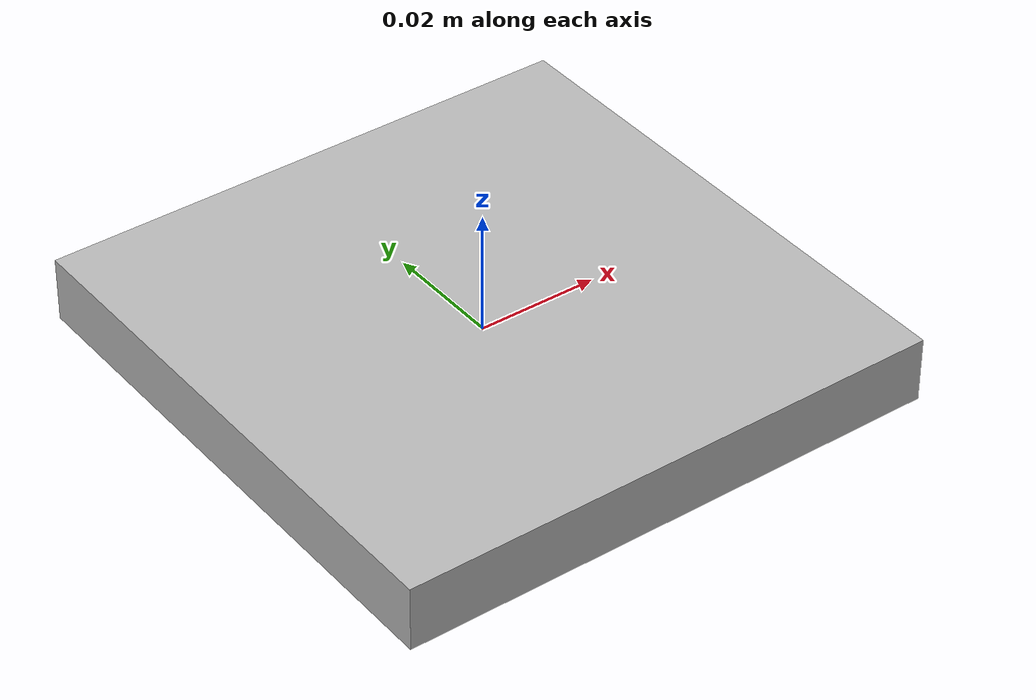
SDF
<?xml version="1.0" ?>
<sdf version="1.7">
    <model name="ar_marker">
        <link name="ar_marker">
            <visual name='visual'>
                <geometry>
                    <mesh>
                        <uri> file://src/robotont_gazebo/ign_worlds/ar_marker/ar_2020_v2.dae
                        </uri>
                    </mesh>
                </geometry>
            </visual>
            <collision name='collision'>
                <geometry>
                    <box>
                        <size>0.2 0.2 0.2</size>
                    </box>
                </geometry>
            </collision>
            <inertial>
                <origin xyz="0 0 0"/>
                <mass>1.0</mass>
                <inertia>
                    <ixx>0.0741666666667</ixx>
                    <ixy>0</ixy>
                    <ixz>0</ixz>
                    <iyy>0.0585416666667</iyy>
                    <iyz>0</iyz>
                    <izz>0.0260416666667</izz>
                </inertia>
            </inertial>
        </link>

        <plugin
            filename="ignition-gazebo-velocity-control-system"
            name="ignition::gazebo::systems::VelocityControl">
        </plugin>
        <!-- Moving Forward-->
        <plugin filename="libignition-gazebo-triggered-publisher-system.so"
                name="ignition::gazebo::systems::TriggeredPublisher">
            <input type="ignition.msgs.Int32" topic="/keyboard/keypress">
                <match field="data">73</match>
            </input>
            <output type="ignition.msgs.Twist" topic="/model/ar_marker/cmd_vel">
                linear: {z: 1}, angular: {x: 0.0}
            </output>
        </plugin>

        <!-- Moving Backward-->
        <plugin filename="libignition-gazebo-triggered-publisher-system.so"
                name="ignition::gazebo::systems::TriggeredPublisher">
            <input type="ignition.msgs.Int32" topic="/keyboard/keypress">
                <match field="data">44</match>
            </input>
            <output type="ignition.msgs.Twist" topic="/model/ar_marker/cmd_vel">
                linear: {z: -1}, angular: {x: 0.0}
            </output>
        </plugin>

        <!-- Rotating right-->
        <plugin filename="libignition-gazebo-triggered-publisher-system.so"
                name="ignition::gazebo::systems::TriggeredPublisher">
            <input type="ignition.msgs.Int32" topic="/keyboard/keypress">
                <match field="data">79</match>
            </input>
            <output type="ignition.msgs.Twist" topic="/model/ar_marker/cmd_vel">
                linear: {z: 0.0}, angular: {x: 1}
            </output>
        </plugin>

        <!--Rotating left-->
        <plugin filename="libignition-gazebo-triggered-publisher-system.so"
                name="ignition::gazebo::systems::TriggeredPublisher">
            <input type="ignition.msgs.Int32" topic="/keyboard/keypress">
                <match field="data">85</match>
            </input>
            <output type="ignition.msgs.Twist" topic="/model/ar_marker/cmd_vel">
                linear: {z: 0.0}, angular: {x: -1}
            </output>
        </plugin>

        <!--Moving left-->
        <plugin filename="libignition-gazebo-triggered-publisher-system.so"
                name="ignition::gazebo::systems::TriggeredPublisher">
            <input type="ignition.msgs.Int32" topic="/keyboard/keypress">
                <match field="data">74</match>
            </input>
            <output type="ignition.msgs.Twist" topic="/model/ar_marker/cmd_vel">
                linear: {y: 1}, angular: {x: 0.0}
            </output>
        </plugin>

         <!--Moving Right-->
        <plugin filename="libignition-gazebo-triggered-publisher-system.so"
                name="ignition::gazebo::systems::TriggeredPublisher">
            <input type="ignition.msgs.Int32" topic="/keyboard/keypress">
                <match field="data">76</match>
            </input>
            <output type="ignition.msgs.Twist" topic="/model/ar_marker/cmd_vel">
                linear: {y: -1}, angular: {x: 0.0}
            </output>
        </plugin>

        <!--Stop -->
        <plugin filename="libignition-gazebo-triggered-publisher-system.so"
                name="ignition::gazebo::systems::TriggeredPublisher">
            <input type="ignition.msgs.Int32" topic="/keyboard/keypress">
                <match field="data">75</match>
            </input>
            <output type="ignition.msgs.Twist" topic="/model/ar_marker/cmd_vel">
                linear: {y: 0.0 z: 0.0}, angular: {x: 0.0}
            </output>
        </plugin>
    </model>
</sdf>
